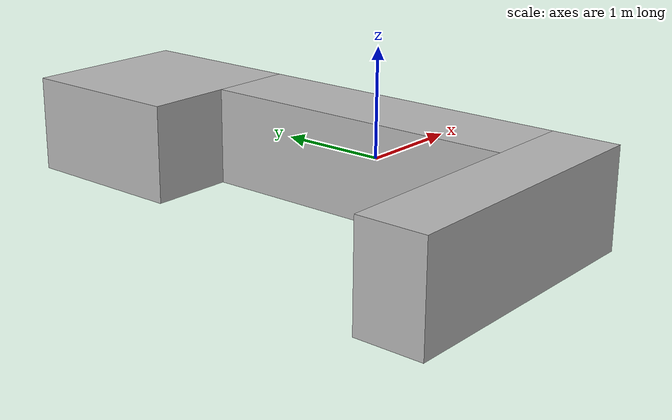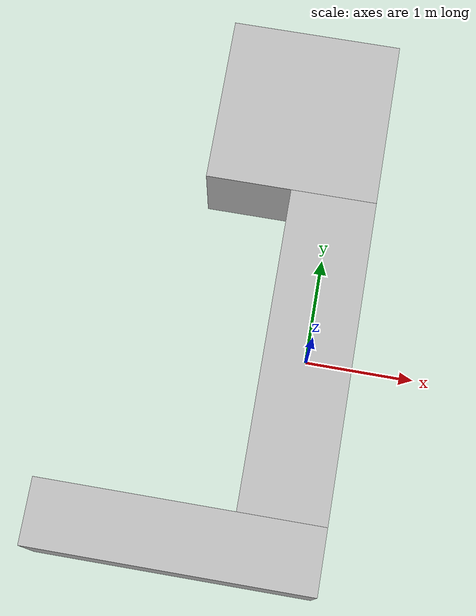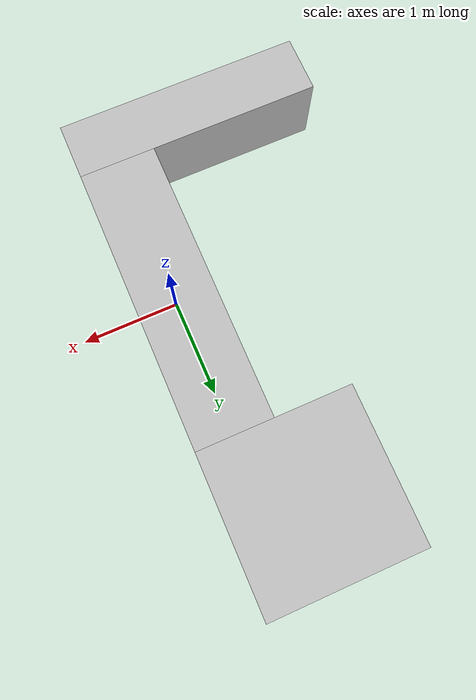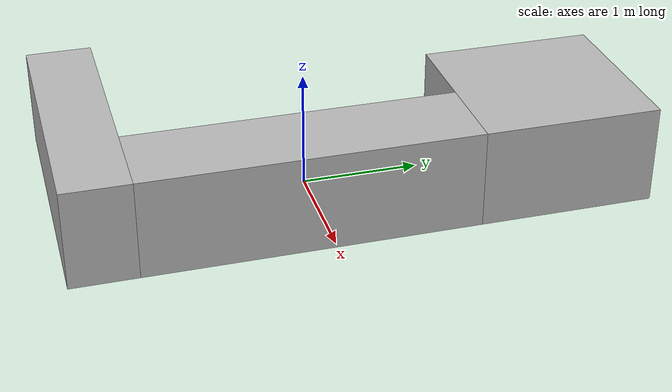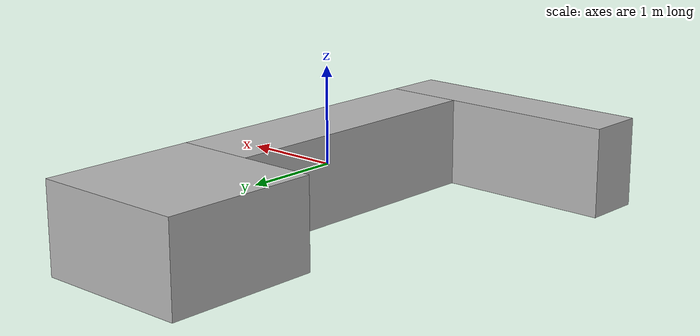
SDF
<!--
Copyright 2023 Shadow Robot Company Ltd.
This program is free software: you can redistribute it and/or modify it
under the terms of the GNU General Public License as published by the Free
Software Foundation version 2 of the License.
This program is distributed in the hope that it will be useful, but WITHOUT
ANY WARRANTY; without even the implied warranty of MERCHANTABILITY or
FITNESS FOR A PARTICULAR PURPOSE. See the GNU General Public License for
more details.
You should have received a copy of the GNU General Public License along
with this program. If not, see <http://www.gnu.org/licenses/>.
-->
<?xml version='1.0'?>

<sdf version="1.4">
<model name="laminar_flow_boxes">
    <static>true</static>

    <link name="laminar_flow_box">
      <collision name="laminar_flow_box_col">
      <pose>0 0 0 0 0 0</pose>
        <geometry>
          <box>
            <size>0.8 3.0 0.9</size>
          </box>
        </geometry>
      </collision>
      <visual name="laminar_flow_box_vis">
      <pose>0 0 0 0 0 0</pose>
        <geometry>
          <box>
            <size>0.8 3.0 0.9</size>
          </box>
        </geometry>
      </visual>
    </link>

    <link name="laminar_flow_box_1">
      <collision name="laminar_flow_box_1_col">
      <pose>-0.4 2.3 0 0 0 0</pose>
        <geometry>
          <box>
            <size>1.6 1.6 0.9</size>
          </box>
        </geometry>
      </collision>
      <visual name="laminar_flow_box_1_vis">
      <pose>-0.4 2.3 0 0 0 0</pose>
        <geometry>
          <box>
            <size>1.6 1.6 0.9</size>
          </box>
        </geometry>
      </visual>
    </link>

    <link name="laminar_flow_box_2">
      <collision name="laminar_flow_box_2_col">
      <pose>-0.9 -1.8 0 0 0 0</pose>
        <geometry>
          <box>
            <size>2.6 0.6 0.9</size>
          </box>
        </geometry>
      </collision>
      <visual name="laminar_flow_box_2_vis">
      <pose>-0.9 -1.8 0 0 0 0</pose>
        <geometry>
          <box>
            <size>2.6 0.6 0.9</size>
          </box>
        </geometry>
      </visual>
    </link>

</model>
</sdf>
